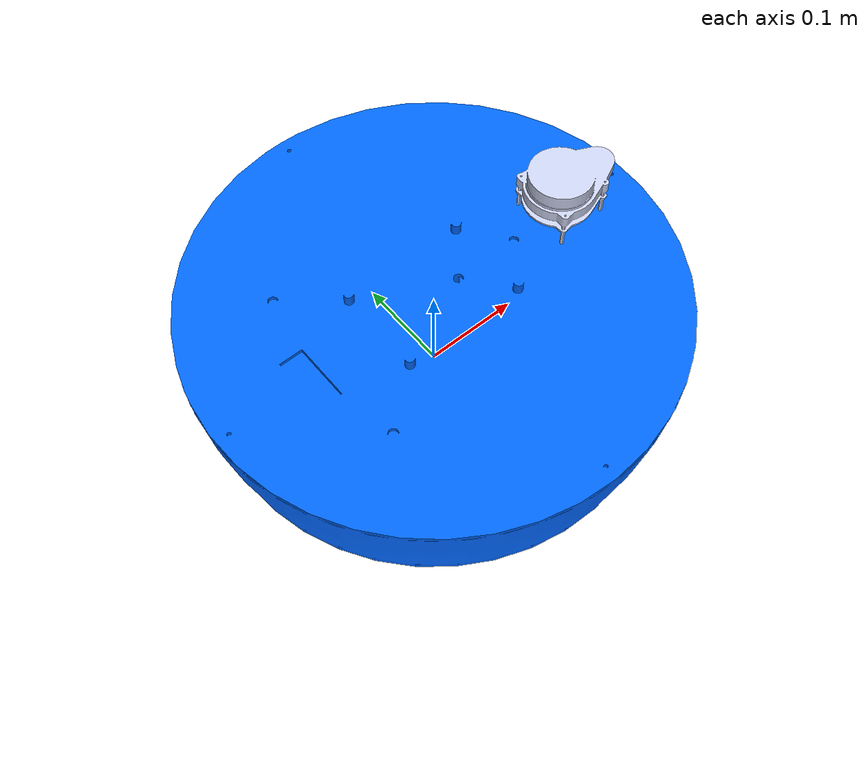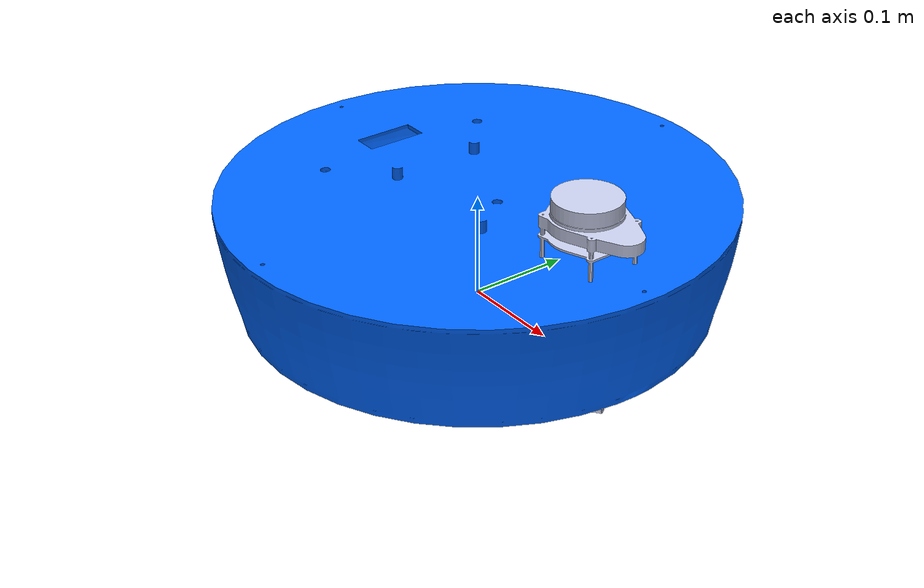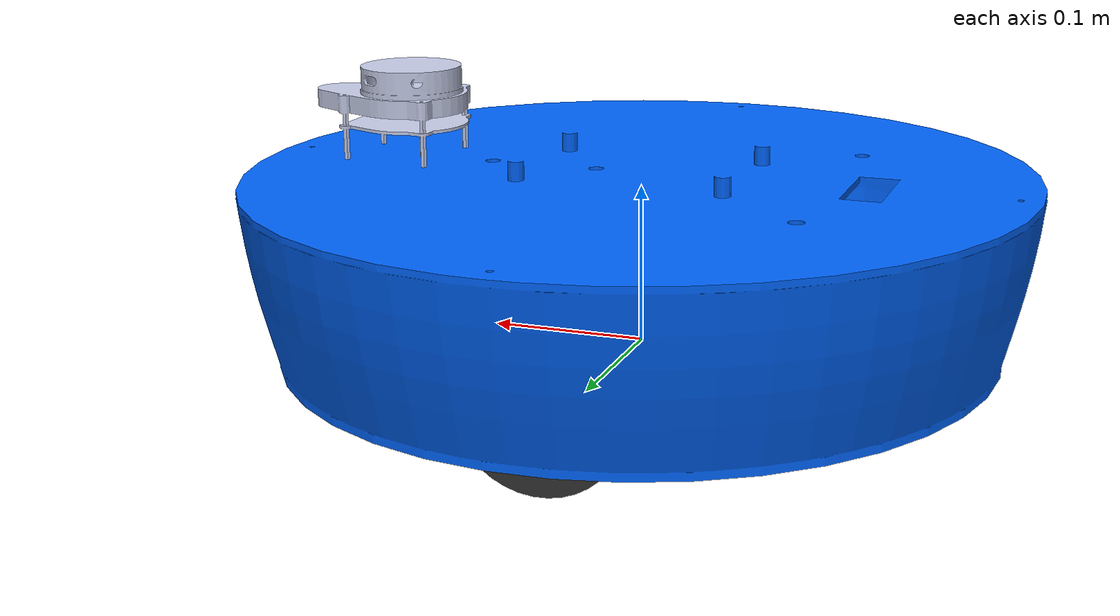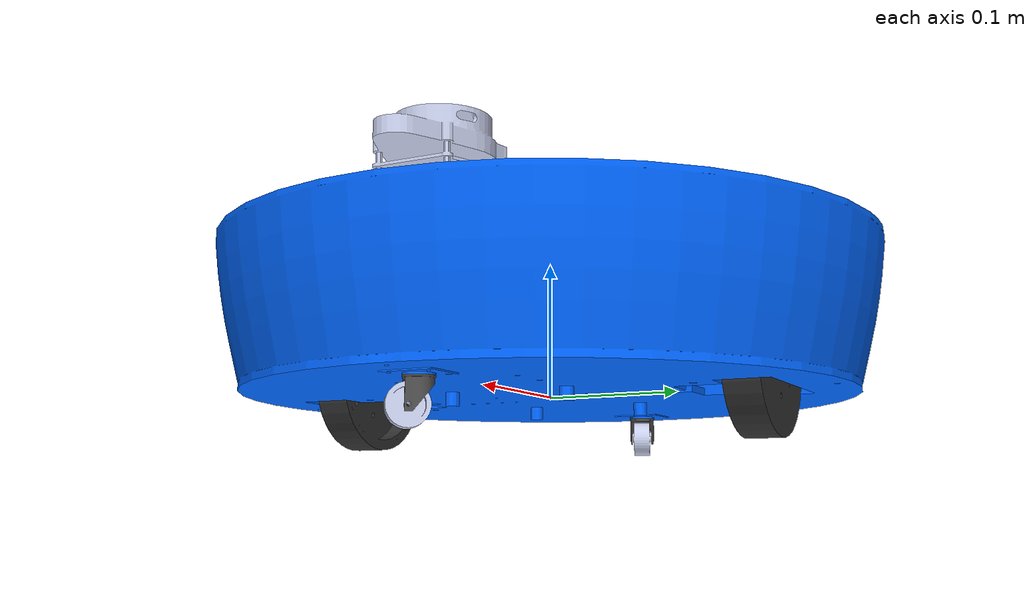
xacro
<?xml version="1.0"?>
<robot xmlns:xacro="http://www.ros.org/wiki/xacro" name="retailbot_base">

<xacro:property name="dummy_inertia" value="1e-09"/>
<xacro:property name="M_PI" value="3.1415926535897931"/>

<material name="dark_grey"><color rgba="0.2 0.2 0.2 1.0" /></material>
<material name="light_grey"><color rgba="0.4 0.4 0.4 1.0" /></material>
<material name="yellow"><color rgba="0.8 0.8 0.0 1.0" /></material>
<material name="black"><color rgba="0.15 0.15 0.15 1.0" /></material>
<material name="blue"><color rgba="0 0.4 1.0 1.0" /></material>

<xacro:macro name="wheel" params="prefix reflect *joint_pose">
	<link
    name="${prefix}_wheel">
    <inertial>

      <mass
        value="0.1" />
      <inertia
        ixx="5.1458e-5" iyy="5.1458e-5" izz="6.125e-5"
        ixy="0" ixz="0" iyz="0"/>

    </inertial>

    <visual>
      <origin
        xyz="0 0 0"
        rpy="0 0 0" />
      <geometry>
        <mesh
          filename="package://retailbot_description/meshes/${prefix}_wheel.STL" />
      </geometry>
      <material name="dark_grey"/>

    </visual>

    <collision>
      <origin
        xyz="0 0 ${reflect*0.013}"
        rpy="0 0 0" />
      <geometry>
       <cylinder length="0.026" radius="0.052"/>
      </geometry>
    </collision>

  </link>

  <joint
    name="${prefix}_wheel_joint"
    type="continuous">
    <xacro:insert_block name="joint_pose" />

    <parent
      link="base_link" />
    <child
      link="${prefix}_wheel" />
    <axis
      xyz="0 0 1" />
  </joint>

  <gazebo reference="${prefix}_wheel">
      <material>Gazebo/DarkGrey</material>
  </gazebo>

  <transmission name="${prefix}_wheel_trans">
      <type>transmission_interface/SimpleTransmission</type>
      <joint name="${prefix}_wheel_joint">
        <hardwareInterface>hardware_interface/VelocityJointInterface</hardwareInterface>
      </joint>
      <actuator name="${prefix}_actuator">
        <mechanicalReduction>1</mechanicalReduction>
        <hardwareInterface>VelocityJointInterface</hardwareInterface>
      </actuator>
    </transmission>

</xacro:macro>

<xacro:macro name="caster" params="prefix reflect *joint_pose">

<link
    name="caster${prefix}">
    <inertial>
      <origin
        xyz="-2.77555756156289E-17 5.55111512312578E-17 -6.22577482985859E-05"
        rpy="0 0 0" />
      <mass
        value="0.1" />
      <inertia
        ixx="5.1458e-5" iyy="5.1458e-5" izz="6.125e-5"
        ixy="0" ixz="0" iyz="0"/>
    </inertial>
    <visual>
      <origin
        xyz="0 0 0"
        rpy="0 0 0" />
      <geometry>
        <mesh
          filename="package://retailbot_description/meshes/caster${prefix}.STL" />
      </geometry>
      <material
        name="">
        <color
          rgba="0.792156862745098 0.819607843137255 0.933333333333333 1" />
      </material>
    </visual>
    <collision>
      <origin
        xyz="0 0 0"
        rpy="0 0 0" />
      <geometry>
        <cylinder length="0.013" radius="0.014"/>
      </geometry>
    </collision>
  </link>
  <joint
    name="caster${prefix}_joint"
    type="continuous">
    <xacro:insert_block name="joint_pose" />
    <parent
      link="free${prefix}" />
    <child
      link="caster${prefix}" />
    <axis
      xyz="0 0 ${reflect}*1" />
  </joint>

</xacro:macro>

<xacro:macro name="free" params="prefix *joint_pose">
  <link
    name="free${prefix}">
    <inertial>
      <origin
        xyz="-0.000454392731273207 7.23966299104317E-07 0.0171929622748198"
        rpy="0 0 0" />
      <mass
        value="0.1" />
      <inertia
        ixx="0.00083" iyy="0.00083" izz="0.000167"
        ixy="0" ixz="0" iyz="0" />
    </inertial>
    <visual>
      <origin
        xyz="0 0 0"
        rpy="0 0 0" />
      <geometry>
        <mesh
          filename="package://retailbot_description/meshes/free${prefix}.STL" />
      </geometry>

      <material name="DarkGrey"/>

    </visual>
    <collision>
      <origin
        xyz="0 0 0.02241"
        rpy="0 0 0" />
      <geometry>
        <cylinder length="0.00518" radius="0.01"/>
      </geometry>
    </collision>
  </link>

  <joint
    name="free${prefix}_joint"
    type="continuous">
    <xacro:insert_block name="joint_pose" />
    <parent
      link="base_link" />
    <child
      link="free${prefix}" />
    <axis
      xyz="0 0 1" />
  </joint>

</xacro:macro>

 <xacro:macro name="VLP-16" params="parent:=base_link name:=velodyne topic:=/velodyne_points">

    <joint name="${name}_base_mount_joint" type="fixed">
      <origin
      xyz="0.1555 0 0.139"
      rpy="0 0 0" />
      <parent link="${parent}"/>
      <child link="${name}_base_link"/>
    </joint>

    <link name="${name}_base_link">
      <inertial>
        <mass value="0.83"/>
        <origin xyz="0 0 0.03585"/>
        <inertia ixx="${(0.83 * (3.0*0.0516*0.0516 + 0.0717*0.0717)) / 12.0}" ixy="0" ixz="0"
          iyy="${(0.83 * (3.0*0.0516*0.0516 + 0.0717*0.0717)) / 12.0}" iyz="0"
          izz="${0.5 * 0.83 * (0.0516*0.0516)}"/>
      </inertial>
      <visual>
        <geometry>
          <mesh filename="package://velodyne_description/meshes/VLP16_base_1.dae" />
        </geometry>
      </visual>
      <visual>
        <geometry>
          <mesh filename="package://velodyne_description/meshes/VLP16_base_2.dae" />
        </geometry>
      </visual>
      <collision>
        <origin rpy="0 0 0" xyz="0 0 0.03585"/>
        <geometry>
          <cylinder radius="0.0516" length="0.0717"/>
        </geometry>
      </collision>
    </link>

    <joint name="${name}_base_scan_joint" type="fixed" >
      <origin xyz="0 0 0.0377" rpy="0 0 0" />
      <parent link="${name}_base_link" />
      <child link="${name}"/>
    </joint>

    <link name="${name}">
      <inertial>
        <mass value="0.01"/>
        <origin xyz="0 0 0"/>
        <inertia ixx="1e-7" ixy="0" ixz="0" iyy="1e-7" iyz="0" izz="1e-7"/>
      </inertial>
      <visual>
        <origin xyz="0 0 -0.0377" />
        <geometry>
          <mesh filename="package://velodyne_description/meshes/VLP16_scan.dae" />
        </geometry>
      </visual>
    </link>

</xacro:macro>

  <link name="base_footprint">
   </link>
  <link
    name="base_link">
    <inertial>
      <origin
        xyz="0.00047861 -8.1185E-16 0.055391"
        rpy="0 0 0" />
      <mass
        value="4.8031" />
      <inertia
        ixx="0.010896"
        ixy="-1.8033E-18"
        ixz="-0.00012767"
        iyy="0.011096"
        iyz="-5.4092E-20"
        izz="0.0003662" />

    </inertial>
    <visual>
      <origin
        xyz="0 0 0"
        rpy="0 0 0" />
      <geometry>
        <mesh
          filename="package://retailbot_description/meshes/base_link.STL" />
      </geometry>
      <material name="blue"/>

    </visual>
    <collision>
      <origin
        xyz="0 0 0.0545"
        rpy="0 0 0" />
      <geometry>
        <cylinder length="0.109" radius="0.25"/>
      </geometry>
    </collision>
  </link>

  <joint name="base_link_joint" type="fixed">
     <parent link="base_footprint"/>
     <child link="base_link"/>
   </joint>

  <xacro:wheel prefix="right" reflect="-1" >
    <origin
      xyz="-0.00011132 -0.1493 0.017424"
      rpy="-1.5708 -0.62853 0" />
  </xacro:wheel>

  <xacro:wheel prefix="left" reflect="1" >
    <origin
      xyz="0.00011132 0.1493 0.017424"
      rpy="-1.5708 -0.62853 0" />
  </xacro:wheel>

  <xacro:free prefix="1">
    <origin
      xyz="-0.1785 0 -0.025"
      rpy="0 0 -2.7786" />

  </xacro:free>

  <xacro:caster prefix="1" reflect="1">
    <origin
      xyz="-0.0065 0 0.00442000000000015"
      rpy="-1.5707963267949 0.304078142895362 -3.14159265358979" />

  </xacro:caster>

  <xacro:free prefix="">
    <origin
      xyz="0.1785 0 -0.025"
      rpy="0 0 2.2359" />

  </xacro:free>

  <xacro:caster prefix="" reflect="-1">
    <origin
      xyz="-0.0065 0 0.00442"
      rpy="-1.5708 -0.44625 -7.9999E-16" />

  </xacro:caster>

  <link name="imu_link">
    <inertial>
      <mass value="0.001"/>
      <origin xyz="0 0 0" rpy="0 0 0"/>
      <inertia ixx="${dummy_inertia}" ixy="0.0" ixz="0.0" iyy="${dummy_inertia}" iyz="0.0" izz="${dummy_inertia}"/>
    </inertial>
  </link>

  <joint name="imu_joint" type="fixed">
    <parent link="base_link" />
    <child link="imu_link" />
  </joint>

<link
    name="laser">
    <inertial>
      <origin
        xyz="0.00781357707654733 -9.06526008550047E-05 0.00659313417291452"
        rpy="0 0 0" />
      <mass
        value="0.0835552065247727" />
      <inertia
        ixx="4.286212790213E-06"
        ixy="-6.03360746189324E-08"
        ixz="1.94532155948423E-06"
        iyy="5.16583781965134E-06"
        iyz="1.32813368971549E-07"
        izz="8.87863705765745E-07" />
    </inertial>
    <visual>
      <origin
        xyz="0 0 0"
        rpy="0 0 0" />
      <geometry>
        <mesh
          filename="package://retailbot_description/meshes/laser.STL" />
      </geometry>
      <material
        name="">
        <color
          rgba="0.792156862745098 0.819607843137255 0.933333333333333 1" />
      </material>
    </visual>
    <collision>
      <origin
        xyz="0.015 0 0"
        rpy="0 0 0" />
      <geometry>
        <box size="0.11 0.07128 0.05839"/>
      </geometry>
    </collision>
  </link>
  <joint
    name="laser_joint"
    type="fixed">
    <origin
      xyz="0.1555 0 0.139"
      rpy="0 0 0" />
    <parent
      link="base_link" />
    <child
      link="laser" />
    <axis
      xyz="0 0 0" />
  </joint>

<xacro:include filename="$(find retailbot_description)/urdf/retailbot_base.gazebo" />

</robot>
